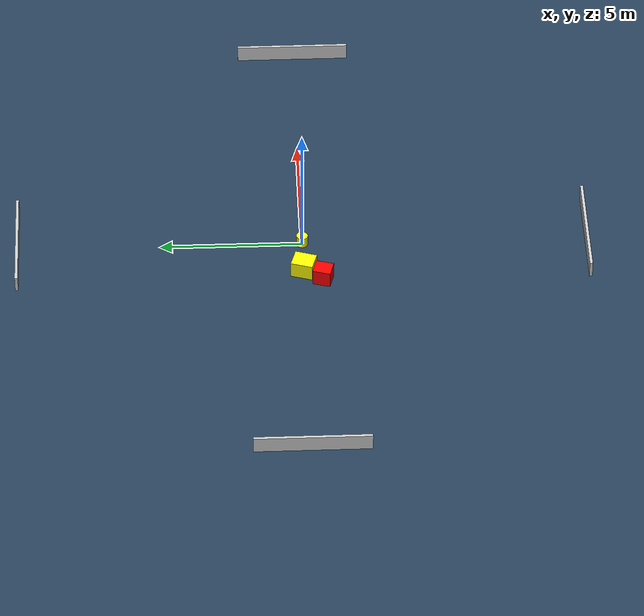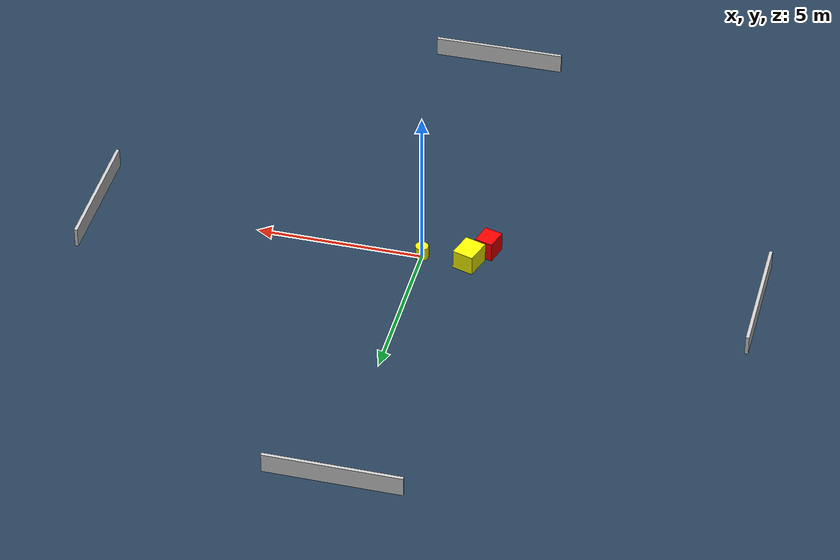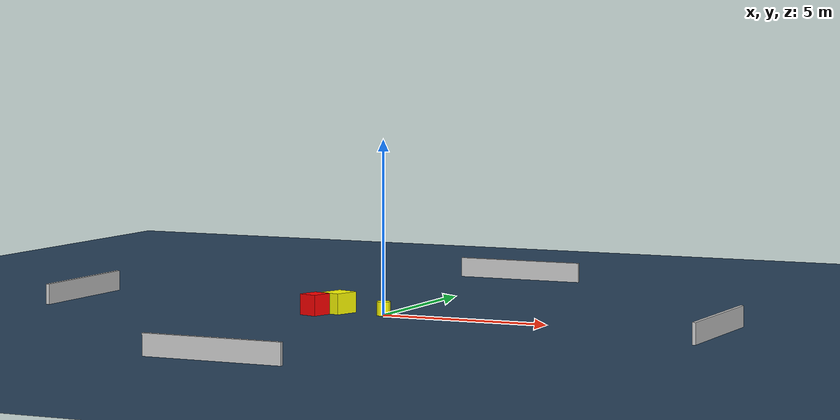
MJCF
<?xml version="1.0" ?>
<mujoco model="generated_environment">
  <option timestep="0.01" integrator="RK4" cone="elliptic"/>
  <default>
    <geom density="1"/>
  </default>
  <asset>
    <texture builtin="gradient" height="3072" name="skybox" rgb1="0.3 0.5 0.7" rgb2="0 0 0" type="skybox" width="512"/>
    <texture builtin="checker" height="300" name="groundplane" rgb1="0.2 0.3 0.4" rgb2="0.1 0.2 0.3" type="2d" width="300"/>
    <material name="groundplane" reflectance="0.2" texrepeat="5 5" texture="groundplane"/>
  </asset>
  <worldbody>
    <light dir="0 0 -1" directional="true" pos="0 0 1.5"/>
    <geom condim="3" friction="0.5 0.005 0.001" material="groundplane" name="floor" pos="0 0 0" size="0 0 0.05" type="plane"/>
    <body name="walls">
      <geom name="wall_1" condim="4" pos="-10.0 0.0 0.3" rgba="0.800000011920929 0.800000011920929 0.800000011920929 1.0" size="0.05 2.0 0.3" type="box"/>
      <geom name="wall_2" condim="4" pos="10.0 0.0 0.3" rgba="0.800000011920929 0.800000011920929 0.800000011920929 1.0" size="0.05 2.0 0.3" type="box"/>
      <geom name="wall_3" condim="4" pos="0.0 -10.0 0.3" rgba="0.800000011920929 0.800000011920929 0.800000011920929 1.0" size="2.0 0.05 0.3" type="box"/>
      <geom name="wall_4" condim="4" pos="0.0 10.0 0.3" rgba="0.800000011920929 0.800000011920929 0.800000011920929 1.0" size="2.0 0.05 0.3" type="box"/>
    </body>
    <body name="robot">
      <joint name="joint_x" type="slide" pos="0 0 0" axis="1 0 0"/>
      <joint name="joint_y" type="slide" pos="0 0 0" axis="0 1 0"/>
      <geom name="robot" type="cylinder" pos="0.0 0.0 0.2" size="0.2 0.2 0.0" mass="5.0" friction="1.0 0.005 0.0001" condim="4" rgba="1.0 1.0 0.0 1.0"/>
    </body>
    <body name="obstacle_1_movable">
      <geom name="obstacle_1_movable" condim="4" pos="-1.4206416304174712 -0.00910863220194552 0.3" euler="0 0 342.7884868722163" friction="0.0 0.005 0.001" rgba="1.0 1.0 0.0 1.0" size="0.32413391345633347 0.38704012471548377 0.3" type="box" mass="0.1"/>
      <joint type="free"/>
    </body>
    <body name="obstacle_2_static">
      <geom name="obstacle_2_static" condim="4" pos="-1.8508910057847623 -0.6664733997658032 0.3" euler="0 0 74.15337923606265" friction="0.0 0.005 0.001" rgba="1.0 0.0 0.0 1.0" size="0.3163959266692019 0.27749346044572526 0.3" type="box"/>
    </body>
  </worldbody>
  <actuator>
    <motor name="actuator_x" joint="joint_x" gear="1" ctrlrange="-1 1"/>
    <motor name="actuator_y" joint="joint_y" gear="1" ctrlrange="-1 1"/>
  </actuator>
</mujoco>
